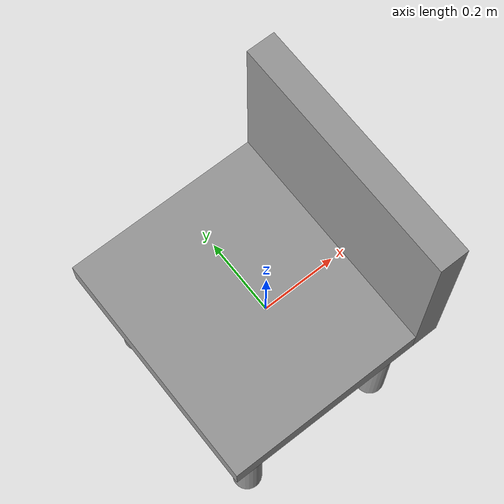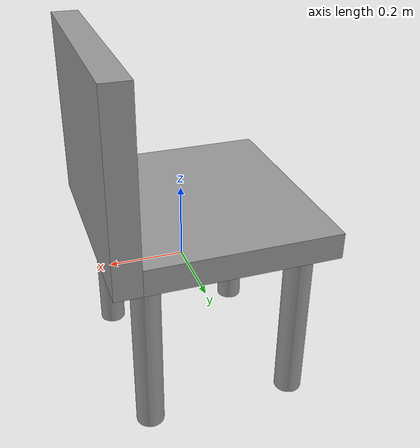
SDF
<?xml version='1.0'?>
<sdf version='1.7'>
  <model name='chair'>
    <link name='link_0'>
      <inertial>
        <mass>1</mass>
        <inertia>
          <ixx>0.166667</ixx>
          <ixy>0</ixy>
          <ixz>0</ixz>
          <iyy>0.166667</iyy>
          <iyz>0</iyz>
          <izz>0.166667</izz>
        </inertia>
        <pose>0 0 0 0 -0 0</pose>
      </inertial>
      <pose>-0.067504 0 0.137499 0 -0 0</pose>
      <gravity>1</gravity>
      <self_collide>0</self_collide>
      <kinematic>0</kinematic>
      <enable_wind>0</enable_wind>
      <visual name='visual'>
        <pose>0 0 0 0 -0 0</pose>
        <geometry>
          <box>
            <size>0.5 0.6 0.07</size>
          </box>
        </geometry>
        <material>
          <lighting>1</lighting>
          <script>
            <uri>file://media/materials/scripts/gazebo.material</uri>
            <name>Gazebo/Grey</name>
          </script>
          <shader type='pixel'>
            <normal_map>__default__</normal_map>
          </shader>
          <ambient>0.3 0.3 0.3 1</ambient>
          <diffuse>0.7 0.7 0.7 1</diffuse>
          <specular>0.01 0.01 0.01 1</specular>
          <emissive>0 0 0 1</emissive>
        </material>
        <transparency>0</transparency>
        <cast_shadows>1</cast_shadows>
      </visual>
      <collision name='collision'>
        <laser_retro>0</laser_retro>
        <max_contacts>10</max_contacts>
        <pose>0 0 0 0 -0 0</pose>
        <geometry>
          <box>
            <size>0.5 0.6 0.07</size>
          </box>
        </geometry>
        <surface>
          <friction>
            <ode>
              <mu>1</mu>
              <mu2>1</mu2>
              <fdir1>0 0 0</fdir1>
              <slip1>0</slip1>
              <slip2>0</slip2>
            </ode>
            <torsional>
              <coefficient>1</coefficient>
              <patch_radius>0</patch_radius>
              <surface_radius>0</surface_radius>
              <use_patch_radius>1</use_patch_radius>
              <ode>
                <slip>0</slip>
              </ode>
            </torsional>
          </friction>
          <bounce>
            <restitution_coefficient>0</restitution_coefficient>
            <threshold>1e+06</threshold>
          </bounce>
          <contact>
            <collide_without_contact>0</collide_without_contact>
            <collide_without_contact_bitmask>1</collide_without_contact_bitmask>
            <collide_bitmask>1</collide_bitmask>
            <ode>
              <soft_cfm>0</soft_cfm>
              <soft_erp>0.2</soft_erp>
              <kp>1e+13</kp>
              <kd>1</kd>
              <max_vel>0.01</max_vel>
              <min_depth>0</min_depth>
            </ode>
            <bullet>
              <split_impulse>1</split_impulse>
              <split_impulse_penetration_threshold>-0.01</split_impulse_penetration_threshold>
              <soft_cfm>0</soft_cfm>
              <soft_erp>0.2</soft_erp>
              <kp>1e+13</kp>
              <kd>1</kd>
            </bullet>
          </contact>
        </surface>
      </collision>
    </link>
    <link name='link_0_clone'>
      <inertial>
        <mass>1</mass>
        <inertia>
          <ixx>0.166667</ixx>
          <ixy>0</ixy>
          <ixz>0</ixz>
          <iyy>0.166667</iyy>
          <iyz>0</iyz>
          <izz>0.166667</izz>
        </inertia>
        <pose>0 0 0 0 -0 0</pose>
      </inertial>
      <pose>0.21752 0 0.352503 0 1.5707 0</pose>
      <gravity>1</gravity>
      <self_collide>0</self_collide>
      <kinematic>0</kinematic>
      <enable_wind>0</enable_wind>
      <visual name='visual'>
        <pose>0 0 0 0 -0 0</pose>
        <geometry>
          <box>
            <size>0.5 0.6 0.07</size>
          </box>
        </geometry>
        <material>
          <lighting>1</lighting>
          <script>
            <uri>file://media/materials/scripts/gazebo.material</uri>
            <name>Gazebo/Grey</name>
          </script>
          <shader type='pixel'>
            <normal_map>__default__</normal_map>
          </shader>
          <ambient>0.3 0.3 0.3 1</ambient>
          <diffuse>0.7 0.7 0.7 1</diffuse>
          <specular>0.01 0.01 0.01 1</specular>
          <emissive>0 0 0 1</emissive>
        </material>
        <transparency>0</transparency>
        <cast_shadows>1</cast_shadows>
      </visual>
      <collision name='collision'>
        <laser_retro>0</laser_retro>
        <max_contacts>10</max_contacts>
        <pose>0 0 0 0 -0 0</pose>
        <geometry>
          <box>
            <size>0.5 0.6 0.07</size>
          </box>
        </geometry>
        <surface>
          <friction>
            <ode>
              <mu>1</mu>
              <mu2>1</mu2>
              <fdir1>0 0 0</fdir1>
              <slip1>0</slip1>
              <slip2>0</slip2>
            </ode>
            <torsional>
              <coefficient>1</coefficient>
              <patch_radius>0</patch_radius>
              <surface_radius>0</surface_radius>
              <use_patch_radius>1</use_patch_radius>
              <ode>
                <slip>0</slip>
              </ode>
            </torsional>
          </friction>
          <bounce>
            <restitution_coefficient>0</restitution_coefficient>
            <threshold>1e+06</threshold>
          </bounce>
          <contact>
            <collide_without_contact>0</collide_without_contact>
            <collide_without_contact_bitmask>1</collide_without_contact_bitmask>
            <collide_bitmask>1</collide_bitmask>
            <ode>
              <soft_cfm>0</soft_cfm>
              <soft_erp>0.2</soft_erp>
              <kp>1e+13</kp>
              <kd>1</kd>
              <max_vel>0.01</max_vel>
              <min_depth>0</min_depth>
            </ode>
            <bullet>
              <split_impulse>1</split_impulse>
              <split_impulse_penetration_threshold>-0.01</split_impulse_penetration_threshold>
              <soft_cfm>0</soft_cfm>
              <soft_erp>0.2</soft_erp>
              <kp>1e+13</kp>
              <kd>1</kd>
            </bullet>
          </contact>
        </surface>
      </collision>
    </link>
    <link name='link_1'>
      <inertial>
        <mass>1</mass>
        <inertia>
          <ixx>0.145833</ixx>
          <ixy>0</ixy>
          <ixz>0</ixz>
          <iyy>0.145833</iyy>
          <iyz>0</iyz>
          <izz>0.125</izz>
        </inertia>
        <pose>0 0 0 0 -0 0</pose>
      </inertial>
      <pose>-0.237504 -0.23 -0.122501 0 -0 0</pose>
      <gravity>1</gravity>
      <self_collide>0</self_collide>
      <kinematic>0</kinematic>
      <enable_wind>0</enable_wind>
      <visual name='visual'>
        <pose>0 0 0 0 -0 0</pose>
        <geometry>
          <cylinder>
            <radius>0.037</radius>
            <length>0.45</length>
          </cylinder>
        </geometry>
        <material>
          <lighting>1</lighting>
          <script>
            <uri>file://media/materials/scripts/gazebo.material</uri>
            <name>Gazebo/Grey</name>
          </script>
          <shader type='pixel'>
            <normal_map>__default__</normal_map>
          </shader>
          <ambient>0.3 0.3 0.3 1</ambient>
          <diffuse>0.7 0.7 0.7 1</diffuse>
          <specular>0.01 0.01 0.01 1</specular>
          <emissive>0 0 0 1</emissive>
        </material>
        <transparency>0</transparency>
        <cast_shadows>1</cast_shadows>
      </visual>
      <collision name='collision'>
        <laser_retro>0</laser_retro>
        <max_contacts>10</max_contacts>
        <pose>0 0 0 0 -0 0</pose>
        <geometry>
          <cylinder>
            <radius>0.037</radius>
            <length>0.45</length>
          </cylinder>
        </geometry>
        <surface>
          <friction>
            <ode>
              <mu>1</mu>
              <mu2>1</mu2>
              <fdir1>0 0 0</fdir1>
              <slip1>0</slip1>
              <slip2>0</slip2>
            </ode>
            <torsional>
              <coefficient>1</coefficient>
              <patch_radius>0</patch_radius>
              <surface_radius>0</surface_radius>
              <use_patch_radius>1</use_patch_radius>
              <ode>
                <slip>0</slip>
              </ode>
            </torsional>
          </friction>
          <bounce>
            <restitution_coefficient>0</restitution_coefficient>
            <threshold>1e+06</threshold>
          </bounce>
          <contact>
            <collide_without_contact>0</collide_without_contact>
            <collide_without_contact_bitmask>1</collide_without_contact_bitmask>
            <collide_bitmask>1</collide_bitmask>
            <ode>
              <soft_cfm>0</soft_cfm>
              <soft_erp>0.2</soft_erp>
              <kp>1e+13</kp>
              <kd>1</kd>
              <max_vel>0.01</max_vel>
              <min_depth>0</min_depth>
            </ode>
            <bullet>
              <split_impulse>1</split_impulse>
              <split_impulse_penetration_threshold>-0.01</split_impulse_penetration_threshold>
              <soft_cfm>0</soft_cfm>
              <soft_erp>0.2</soft_erp>
              <kp>1e+13</kp>
              <kd>1</kd>
            </bullet>
          </contact>
        </surface>
      </collision>
    </link>
    <link name='link_1_clone'>
      <inertial>
        <mass>1</mass>
        <inertia>
          <ixx>0.145833</ixx>
          <ixy>0</ixy>
          <ixz>0</ixz>
          <iyy>0.145833</iyy>
          <iyz>0</iyz>
          <izz>0.125</izz>
        </inertia>
        <pose>0 0 0 0 -0 0</pose>
      </inertial>
      <pose>-0.237504 0.23 -0.122501 0 -0 0</pose>
      <gravity>1</gravity>
      <self_collide>0</self_collide>
      <kinematic>0</kinematic>
      <enable_wind>0</enable_wind>
      <visual name='visual'>
        <pose>0 0 0 0 -0 0</pose>
        <geometry>
          <cylinder>
            <radius>0.037</radius>
            <length>0.45</length>
          </cylinder>
        </geometry>
        <material>
          <lighting>1</lighting>
          <script>
            <uri>file://media/materials/scripts/gazebo.material</uri>
            <name>Gazebo/Grey</name>
          </script>
          <shader type='pixel'>
            <normal_map>__default__</normal_map>
          </shader>
          <ambient>0.3 0.3 0.3 1</ambient>
          <diffuse>0.7 0.7 0.7 1</diffuse>
          <specular>0.01 0.01 0.01 1</specular>
          <emissive>0 0 0 1</emissive>
        </material>
        <transparency>0</transparency>
        <cast_shadows>1</cast_shadows>
      </visual>
      <collision name='collision'>
        <laser_retro>0</laser_retro>
        <max_contacts>10</max_contacts>
        <pose>0 0 0 0 -0 0</pose>
        <geometry>
          <cylinder>
            <radius>0.037</radius>
            <length>0.45</length>
          </cylinder>
        </geometry>
        <surface>
          <friction>
            <ode>
              <mu>1</mu>
              <mu2>1</mu2>
              <fdir1>0 0 0</fdir1>
              <slip1>0</slip1>
              <slip2>0</slip2>
            </ode>
            <torsional>
              <coefficient>1</coefficient>
              <patch_radius>0</patch_radius>
              <surface_radius>0</surface_radius>
              <use_patch_radius>1</use_patch_radius>
              <ode>
                <slip>0</slip>
              </ode>
            </torsional>
          </friction>
          <bounce>
            <restitution_coefficient>0</restitution_coefficient>
            <threshold>1e+06</threshold>
          </bounce>
          <contact>
            <collide_without_contact>0</collide_without_contact>
            <collide_without_contact_bitmask>1</collide_without_contact_bitmask>
            <collide_bitmask>1</collide_bitmask>
            <ode>
              <soft_cfm>0</soft_cfm>
              <soft_erp>0.2</soft_erp>
              <kp>1e+13</kp>
              <kd>1</kd>
              <max_vel>0.01</max_vel>
              <min_depth>0</min_depth>
            </ode>
            <bullet>
              <split_impulse>1</split_impulse>
              <split_impulse_penetration_threshold>-0.01</split_impulse_penetration_threshold>
              <soft_cfm>0</soft_cfm>
              <soft_erp>0.2</soft_erp>
              <kp>1e+13</kp>
              <kd>1</kd>
            </bullet>
          </contact>
        </surface>
      </collision>
    </link>
    <link name='link_1_clone_0'>
      <inertial>
        <mass>1</mass>
        <inertia>
          <ixx>0.145833</ixx>
          <ixy>0</ixy>
          <ixz>0</ixz>
          <iyy>0.145833</iyy>
          <iyz>0</iyz>
          <izz>0.125</izz>
        </inertia>
        <pose>0 0 0 0 -0 0</pose>
      </inertial>
      <pose>0.162496 0.23 -0.122501 0 -0 0</pose>
      <gravity>1</gravity>
      <self_collide>0</self_collide>
      <kinematic>0</kinematic>
      <enable_wind>0</enable_wind>
      <visual name='visual'>
        <pose>0 0 0 0 -0 0</pose>
        <geometry>
          <cylinder>
            <radius>0.037</radius>
            <length>0.45</length>
          </cylinder>
        </geometry>
        <material>
          <lighting>1</lighting>
          <script>
            <uri>file://media/materials/scripts/gazebo.material</uri>
            <name>Gazebo/Grey</name>
          </script>
          <shader type='pixel'>
            <normal_map>__default__</normal_map>
          </shader>
          <ambient>0.3 0.3 0.3 1</ambient>
          <diffuse>0.7 0.7 0.7 1</diffuse>
          <specular>0.01 0.01 0.01 1</specular>
          <emissive>0 0 0 1</emissive>
        </material>
        <transparency>0</transparency>
        <cast_shadows>1</cast_shadows>
      </visual>
      <collision name='collision'>
        <laser_retro>0</laser_retro>
        <max_contacts>10</max_contacts>
        <pose>0 0 0 0 -0 0</pose>
        <geometry>
          <cylinder>
            <radius>0.037</radius>
            <length>0.45</length>
          </cylinder>
        </geometry>
        <surface>
          <friction>
            <ode>
              <mu>1</mu>
              <mu2>1</mu2>
              <fdir1>0 0 0</fdir1>
              <slip1>0</slip1>
              <slip2>0</slip2>
            </ode>
            <torsional>
              <coefficient>1</coefficient>
              <patch_radius>0</patch_radius>
              <surface_radius>0</surface_radius>
              <use_patch_radius>1</use_patch_radius>
              <ode>
                <slip>0</slip>
              </ode>
            </torsional>
          </friction>
          <bounce>
            <restitution_coefficient>0</restitution_coefficient>
            <threshold>1e+06</threshold>
          </bounce>
          <contact>
            <collide_without_contact>0</collide_without_contact>
            <collide_without_contact_bitmask>1</collide_without_contact_bitmask>
            <collide_bitmask>1</collide_bitmask>
            <ode>
              <soft_cfm>0</soft_cfm>
              <soft_erp>0.2</soft_erp>
              <kp>1e+13</kp>
              <kd>1</kd>
              <max_vel>0.01</max_vel>
              <min_depth>0</min_depth>
            </ode>
            <bullet>
              <split_impulse>1</split_impulse>
              <split_impulse_penetration_threshold>-0.01</split_impulse_penetration_threshold>
              <soft_cfm>0</soft_cfm>
              <soft_erp>0.2</soft_erp>
              <kp>1e+13</kp>
              <kd>1</kd>
            </bullet>
          </contact>
        </surface>
      </collision>
    </link>
    <link name='link_1_clone_1'>
      <inertial>
        <mass>1</mass>
        <inertia>
          <ixx>0.145833</ixx>
          <ixy>0</ixy>
          <ixz>0</ixz>
          <iyy>0.145833</iyy>
          <iyz>0</iyz>
          <izz>0.125</izz>
        </inertia>
        <pose>0 0 0 0 -0 0</pose>
      </inertial>
      <pose>0.162496 -0.23 -0.122501 0 -0 0</pose>
      <gravity>1</gravity>
      <self_collide>0</self_collide>
      <kinematic>0</kinematic>
      <enable_wind>0</enable_wind>
      <visual name='visual'>
        <pose>0 0 0 0 -0 0</pose>
        <geometry>
          <cylinder>
            <radius>0.037</radius>
            <length>0.45</length>
          </cylinder>
        </geometry>
        <material>
          <lighting>1</lighting>
          <script>
            <uri>file://media/materials/scripts/gazebo.material</uri>
            <name>Gazebo/Grey</name>
          </script>
          <shader type='pixel'>
            <normal_map>__default__</normal_map>
          </shader>
          <ambient>0.3 0.3 0.3 1</ambient>
          <diffuse>0.7 0.7 0.7 1</diffuse>
          <specular>0.01 0.01 0.01 1</specular>
          <emissive>0 0 0 1</emissive>
        </material>
        <transparency>0</transparency>
        <cast_shadows>1</cast_shadows>
      </visual>
      <collision name='collision'>
        <laser_retro>0</laser_retro>
        <max_contacts>10</max_contacts>
        <pose>0 0 0 0 -0 0</pose>
        <geometry>
          <cylinder>
            <radius>0.037</radius>
            <length>0.45</length>
          </cylinder>
        </geometry>
        <surface>
          <friction>
            <ode>
              <mu>1</mu>
              <mu2>1</mu2>
              <fdir1>0 0 0</fdir1>
              <slip1>0</slip1>
              <slip2>0</slip2>
            </ode>
            <torsional>
              <coefficient>1</coefficient>
              <patch_radius>0</patch_radius>
              <surface_radius>0</surface_radius>
              <use_patch_radius>1</use_patch_radius>
              <ode>
                <slip>0</slip>
              </ode>
            </torsional>
          </friction>
          <bounce>
            <restitution_coefficient>0</restitution_coefficient>
            <threshold>1e+06</threshold>
          </bounce>
          <contact>
            <collide_without_contact>0</collide_without_contact>
            <collide_without_contact_bitmask>1</collide_without_contact_bitmask>
            <collide_bitmask>1</collide_bitmask>
            <ode>
              <soft_cfm>0</soft_cfm>
              <soft_erp>0.2</soft_erp>
              <kp>1e+13</kp>
              <kd>1</kd>
              <max_vel>0.01</max_vel>
              <min_depth>0</min_depth>
            </ode>
            <bullet>
              <split_impulse>1</split_impulse>
              <split_impulse_penetration_threshold>-0.01</split_impulse_penetration_threshold>
              <soft_cfm>0</soft_cfm>
              <soft_erp>0.2</soft_erp>
              <kp>1e+13</kp>
              <kd>1</kd>
            </bullet>
          </contact>
        </surface>
      </collision>
    </link>
    <joint name='link_0_JOINT_0' type='fixed'>
      <parent>link_0</parent>
      <child>link_0_clone</child>
      <pose>0 0 0 0 -0 0</pose>
      <physics>
        <ode>
          <limit>
            <cfm>0</cfm>
            <erp>0.2</erp>
          </limit>
          <suspension>
            <cfm>0</cfm>
            <erp>0.2</erp>
          </suspension>
        </ode>
      </physics>
    </joint>
    <joint name='link_0_JOINT_1' type='fixed'>
      <parent>link_0</parent>
      <child>link_1</child>
      <pose>0 0 0 0 -0 0</pose>
      <physics>
        <ode>
          <limit>
            <cfm>0</cfm>
            <erp>0.2</erp>
          </limit>
          <suspension>
            <cfm>0</cfm>
            <erp>0.2</erp>
          </suspension>
        </ode>
      </physics>
    </joint>
    <joint name='link_0_JOINT_2' type='fixed'>
      <parent>link_0</parent>
      <child>link_1_clone_0</child>
      <pose>0 0 0 0 -0 0</pose>
      <physics>
        <ode>
          <limit>
            <cfm>0</cfm>
            <erp>0.2</erp>
          </limit>
          <suspension>
            <cfm>0</cfm>
            <erp>0.2</erp>
          </suspension>
        </ode>
      </physics>
    </joint>
    <joint name='link_0_JOINT_3' type='fixed'>
      <parent>link_0</parent>
      <child>link_1_clone</child>
      <pose>0 0 0 0 -0 0</pose>
      <physics>
        <ode>
          <limit>
            <cfm>0</cfm>
            <erp>0.2</erp>
          </limit>
          <suspension>
            <cfm>0</cfm>
            <erp>0.2</erp>
          </suspension>
        </ode>
      </physics>
    </joint>
    <joint name='link_0_JOINT_4' type='fixed'>
      <parent>link_0</parent>
      <child>link_1_clone_1</child>
      <pose>0 0 0 0 -0 0</pose>
      <physics>
        <ode>
          <limit>
            <cfm>0</cfm>
            <erp>0.2</erp>
          </limit>
          <suspension>
            <cfm>0</cfm>
            <erp>0.2</erp>
          </suspension>
        </ode>
      </physics>
    </joint>
    <static>0</static>
    <allow_auto_disable>1</allow_auto_disable>
  </model>
</sdf>
